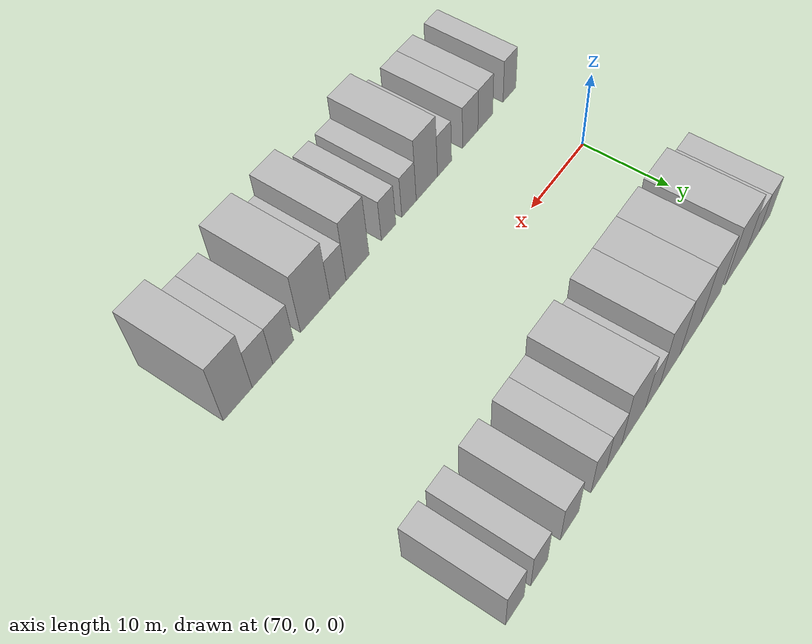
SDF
<sdf version="1.6">
 <world name="default">
  <model name="building_13">
   <static>1</static>
   <pose>69.0498 15.0000 0 0.000000 0.000000 1.570796</pose>
   <link name="link">
    <pose>0 0 3.00 0 0 0</pose>
    <collision name="collision"><geometry><box><size>10.0000 2.5598 6.0000</size></box></geometry></collision>
    <visual name="visual">
     <cast_shadows>0</cast_shadows>
     <geometry><box><size>10.0000 2.5598 6.0000</size></box></geometry>
     <material>
      <script>
       <uri>model://HANNAS_wall/materials/scripts</uri>
       <uri>model://HANNAS_wall/materials/textures</uri>
       <name>vrc/HANNAS_wall</name>
      </script>
     </material>
    </visual>
   </link>
  </model>
  <model name="building_14">
   <static>1</static>
   <pose>71.7501 15.0000 0 0.000000 0.000000 1.570796</pose>
   <link name="link">
    <pose>0 0 3.00 0 0 0</pose>
    <collision name="collision"><geometry><box><size>10.0000 2.8408 6.0000</size></box></geometry></collision>
    <visual name="visual">
     <cast_shadows>0</cast_shadows>
     <geometry><box><size>10.0000 2.8408 6.0000</size></box></geometry>
     <material>
      <script>
       <uri>model://HANNAS_wall/materials/scripts</uri>
       <uri>model://HANNAS_wall/materials/textures</uri>
       <name>vrc/HANNAS_wall</name>
      </script>
     </material>
    </visual>
   </link>
  </model>
  <model name="building_15">
   <static>1</static>
   <pose>75.4201 15.0000 0 0.000000 0.000000 1.570796</pose>
   <link name="link">
    <pose>0 0 4.50 0 0 0</pose>
    <collision name="collision"><geometry><box><size>10.0000 4.4993 9.0000</size></box></geometry></collision>
    <visual name="visual">
     <cast_shadows>0</cast_shadows>
     <geometry><box><size>10.0000 4.4993 9.0000</size></box></geometry>
     <material>
      <script>
       <uri>model://HANNAS_wall/materials/scripts</uri>
       <uri>model://HANNAS_wall/materials/textures</uri>
       <name>vrc/HANNAS_wall</name>
      </script>
     </material>
    </visual>
   </link>
  </model>
  <model name="building_16">
   <static>1</static>
   <pose>80.6914 15.0000 0 0.000000 0.000000 1.570796</pose>
   <link name="link">
    <pose>0 0 4.50 0 0 0</pose>
    <collision name="collision"><geometry><box><size>10.0000 4.0434 9.0000</size></box></geometry></collision>
    <visual name="visual">
     <cast_shadows>0</cast_shadows>
     <geometry><box><size>10.0000 4.0434 9.0000</size></box></geometry>
     <material>
      <script>
       <uri>model://HANNAS_wall/materials/scripts</uri>
       <uri>model://HANNAS_wall/materials/textures</uri>
       <name>vrc/HANNAS_wall</name>
      </script>
     </material>
    </visual>
   </link>
  </model>
  <model name="building_17">
   <static>1</static>
   <pose>84.7833 15.0000 0 0.000000 0.000000 1.570796</pose>
   <link name="link">
    <pose>0 0 4.50 0 0 0</pose>
    <collision name="collision"><geometry><box><size>10.0000 4.1405 9.0000</size></box></geometry></collision>
    <visual name="visual">
     <cast_shadows>0</cast_shadows>
     <geometry><box><size>10.0000 4.1405 9.0000</size></box></geometry>
     <material>
      <script>
       <uri>model://HANNAS_wall/materials/scripts</uri>
       <uri>model://HANNAS_wall/materials/textures</uri>
       <name>vrc/HANNAS_wall</name>
      </script>
     </material>
    </visual>
   </link>
  </model>
  <model name="building_18">
   <static>1</static>
   <pose>88.7812 15.0000 0 0.000000 0.000000 1.570796</pose>
   <link name="link">
    <pose>0 0 4.50 0 0 0</pose>
    <collision name="collision"><geometry><box><size>10.0000 3.8553 9.0000</size></box></geometry></collision>
    <visual name="visual">
     <cast_shadows>0</cast_shadows>
     <geometry><box><size>10.0000 3.8553 9.0000</size></box></geometry>
     <material>
      <script>
       <uri>model://HANNAS_wall/materials/scripts</uri>
       <uri>model://HANNAS_wall/materials/textures</uri>
       <name>vrc/HANNAS_wall</name>
      </script>
     </material>
    </visual>
   </link>
  </model>
  <model name="building_19">
   <static>1</static>
   <pose>92.0073 15.0000 0 0.000000 0.000000 1.570796</pose>
   <link name="link">
    <pose>0 0 3.00 0 0 0</pose>
    <collision name="collision"><geometry><box><size>10.0000 2.5967 6.0000</size></box></geometry></collision>
    <visual name="visual">
     <cast_shadows>0</cast_shadows>
     <geometry><box><size>10.0000 2.5967 6.0000</size></box></geometry>
     <material>
      <script>
       <uri>model://HANNAS_wall/materials/scripts</uri>
       <uri>model://HANNAS_wall/materials/textures</uri>
       <name>vrc/HANNAS_wall</name>
      </script>
     </material>
    </visual>
   </link>
  </model>
  <model name="building_20">
   <static>1</static>
   <pose>95.4486 15.0000 0 0.000000 0.000000 1.570796</pose>
   <link name="link">
    <pose>0 0 4.50 0 0 0</pose>
    <collision name="collision"><geometry><box><size>10.0000 4.2859 9.0000</size></box></geometry></collision>
    <visual name="visual">
     <cast_shadows>0</cast_shadows>
     <geometry><box><size>10.0000 4.2859 9.0000</size></box></geometry>
     <material>
      <script>
       <uri>model://HANNAS_wall/materials/scripts</uri>
       <uri>model://HANNAS_wall/materials/textures</uri>
       <name>vrc/HANNAS_wall</name>
      </script>
     </material>
    </visual>
   </link>
  </model>
  <model name="building_21">
   <static>1</static>
   <pose>98.8770 15.0000 0 0.000000 0.000000 1.570796</pose>
   <link name="link">
    <pose>0 0 3.00 0 0 0</pose>
    <collision name="collision"><geometry><box><size>10.0000 2.5709 6.0000</size></box></geometry></collision>
    <visual name="visual">
     <cast_shadows>0</cast_shadows>
     <geometry><box><size>10.0000 2.5709 6.0000</size></box></geometry>
     <material>
      <script>
       <uri>model://HANNAS_wall/materials/scripts</uri>
       <uri>model://HANNAS_wall/materials/textures</uri>
       <name>vrc/HANNAS_wall</name>
      </script>
     </material>
    </visual>
   </link>
  </model>
  <model name="building_22">
   <static>1</static>
   <pose>101.4697 15.0000 0 0.000000 0.000000 1.570796</pose>
   <link name="link">
    <pose>0 0 3.00 0 0 0</pose>
    <collision name="collision"><geometry><box><size>10.0000 2.6144 6.0000</size></box></geometry></collision>
    <visual name="visual">
     <cast_shadows>0</cast_shadows>
     <geometry><box><size>10.0000 2.6144 6.0000</size></box></geometry>
     <material>
      <script>
       <uri>model://HANNAS_wall/materials/scripts</uri>
       <uri>model://HANNAS_wall/materials/textures</uri>
       <name>vrc/HANNAS_wall</name>
      </script>
     </material>
    </visual>
   </link>
  </model>
  <model name="building_23">
   <static>1</static>
   <pose>106.2533 15.0000 0 0.000000 0.000000 1.570796</pose>
   <link name="link">
    <pose>0 0 3.00 0 0 0</pose>
    <collision name="collision"><geometry><box><size>10.0000 2.9528 6.0000</size></box></geometry></collision>
    <visual name="visual">
     <cast_shadows>0</cast_shadows>
     <geometry><box><size>10.0000 2.9528 6.0000</size></box></geometry>
     <material>
      <script>
       <uri>model://HANNAS_wall/materials/scripts</uri>
       <uri>model://HANNAS_wall/materials/textures</uri>
       <name>vrc/HANNAS_wall</name>
      </script>
     </material>
    </visual>
   </link>
  </model>
  <model name="building_24">
   <static>1</static>
   <pose>111.0208 15.0000 0 0.000000 0.000000 1.570796</pose>
   <link name="link">
    <pose>0 0 3.00 0 0 0</pose>
    <collision name="collision"><geometry><box><size>10.0000 2.5822 6.0000</size></box></geometry></collision>
    <visual name="visual">
     <cast_shadows>0</cast_shadows>
     <geometry><box><size>10.0000 2.5822 6.0000</size></box></geometry>
     <material>
      <script>
       <uri>model://HANNAS_wall/materials/scripts</uri>
       <uri>model://HANNAS_wall/materials/textures</uri>
       <name>vrc/HANNAS_wall</name>
      </script>
     </material>
    </visual>
   </link>
  </model>
  <model name="building_25">
   <static>1</static>
   <pose>114.6714 15.0000 0 0.000000 0.000000 1.570796</pose>
   <link name="link">
    <pose>0 0 3.00 0 0 0</pose>
    <collision name="collision"><geometry><box><size>10.0000 2.7189 6.0000</size></box></geometry></collision>
    <visual name="visual">
     <cast_shadows>0</cast_shadows>
     <geometry><box><size>10.0000 2.7189 6.0000</size></box></geometry>
     <material>
      <script>
       <uri>model://HANNAS_wall/materials/scripts</uri>
       <uri>model://HANNAS_wall/materials/textures</uri>
       <name>vrc/HANNAS_wall</name>
      </script>
     </material>
    </visual>
   </link>
  </model>
  <model name="building_66">
   <static>1</static>
   <pose>68.4313 -15.0000 0 0.000000 0.000000 1.570796</pose>
   <link name="link">
    <pose>0 0 3.00 0 0 0</pose>
    <collision name="collision"><geometry><box><size>10.0000 2.5121 6.0000</size></box></geometry></collision>
    <visual name="visual">
     <cast_shadows>0</cast_shadows>
     <geometry><box><size>10.0000 2.5121 6.0000</size></box></geometry>
     <material>
      <script>
       <uri>model://HANNAS_wall/materials/scripts</uri>
       <uri>model://HANNAS_wall/materials/textures</uri>
       <name>vrc/HANNAS_wall</name>
      </script>
     </material>
    </visual>
   </link>
  </model>
  <model name="building_67">
   <static>1</static>
   <pose>73.0961 -15.0000 0 0.000000 0.000000 1.570796</pose>
   <link name="link">
    <pose>0 0 3.00 0 0 0</pose>
    <collision name="collision"><geometry><box><size>10.0000 2.8175 6.0000</size></box></geometry></collision>
    <visual name="visual">
     <cast_shadows>0</cast_shadows>
     <geometry><box><size>10.0000 2.8175 6.0000</size></box></geometry>
     <material>
      <script>
       <uri>model://HANNAS_wall/materials/scripts</uri>
       <uri>model://HANNAS_wall/materials/textures</uri>
       <name>vrc/HANNAS_wall</name>
      </script>
     </material>
    </visual>
   </link>
  </model>
  <model name="building_68">
   <static>1</static>
   <pose>75.9450 -15.0000 0 0.000000 0.000000 1.570796</pose>
   <link name="link">
    <pose>0 0 3.00 0 0 0</pose>
    <collision name="collision"><geometry><box><size>10.0000 2.8802 6.0000</size></box></geometry></collision>
    <visual name="visual">
     <cast_shadows>0</cast_shadows>
     <geometry><box><size>10.0000 2.8802 6.0000</size></box></geometry>
     <material>
      <script>
       <uri>model://HANNAS_wall/materials/scripts</uri>
       <uri>model://HANNAS_wall/materials/textures</uri>
       <name>vrc/HANNAS_wall</name>
      </script>
     </material>
    </visual>
   </link>
  </model>
  <model name="building_69">
   <static>1</static>
   <pose>80.6461 -15.0000 0 0.000000 0.000000 1.570796</pose>
   <link name="link">
    <pose>0 0 3.00 0 0 0</pose>
    <collision name="collision"><geometry><box><size>10.0000 2.5220 6.0000</size></box></geometry></collision>
    <visual name="visual">
     <cast_shadows>0</cast_shadows>
     <geometry><box><size>10.0000 2.5220 6.0000</size></box></geometry>
     <material>
      <script>
       <uri>model://HANNAS_wall/materials/scripts</uri>
       <uri>model://HANNAS_wall/materials/textures</uri>
       <name>vrc/HANNAS_wall</name>
      </script>
     </material>
    </visual>
   </link>
  </model>
  <model name="building_70">
   <static>1</static>
   <pose>83.7614 -15.0000 0 0.000000 0.000000 1.570796</pose>
   <link name="link">
    <pose>0 0 4.50 0 0 0</pose>
    <collision name="collision"><geometry><box><size>10.0000 3.7086 9.0000</size></box></geometry></collision>
    <visual name="visual">
     <cast_shadows>0</cast_shadows>
     <geometry><box><size>10.0000 3.7086 9.0000</size></box></geometry>
     <material>
      <script>
       <uri>model://HANNAS_wall/materials/scripts</uri>
       <uri>model://HANNAS_wall/materials/textures</uri>
       <name>vrc/HANNAS_wall</name>
      </script>
     </material>
    </visual>
   </link>
  </model>
  <model name="building_71">
   <static>1</static>
   <pose>86.8402 -15.0000 0 0.000000 0.000000 1.570796</pose>
   <link name="link">
    <pose>0 0 3.00 0 0 0</pose>
    <collision name="collision"><geometry><box><size>10.0000 2.4489 6.0000</size></box></geometry></collision>
    <visual name="visual">
     <cast_shadows>0</cast_shadows>
     <geometry><box><size>10.0000 2.4489 6.0000</size></box></geometry>
     <material>
      <script>
       <uri>model://HANNAS_wall/materials/scripts</uri>
       <uri>model://HANNAS_wall/materials/textures</uri>
       <name>vrc/HANNAS_wall</name>
      </script>
     </material>
    </visual>
   </link>
  </model>
  <model name="building_72">
   <static>1</static>
   <pose>90.2648 -15.0000 0 0.000000 0.000000 1.570796</pose>
   <link name="link">
    <pose>0 0 3.00 0 0 0</pose>
    <collision name="collision"><geometry><box><size>10.0000 2.4004 6.0000</size></box></geometry></collision>
    <visual name="visual">
     <cast_shadows>0</cast_shadows>
     <geometry><box><size>10.0000 2.4004 6.0000</size></box></geometry>
     <material>
      <script>
       <uri>model://HANNAS_wall/materials/scripts</uri>
       <uri>model://HANNAS_wall/materials/textures</uri>
       <name>vrc/HANNAS_wall</name>
      </script>
     </material>
    </visual>
   </link>
  </model>
  <model name="building_73">
   <static>1</static>
   <pose>95.2862 -15.0000 0 0.000000 0.000000 1.570796</pose>
   <link name="link">
    <pose>0 0 4.50 0 0 0</pose>
    <collision name="collision"><geometry><box><size>10.0000 3.6424 9.0000</size></box></geometry></collision>
    <visual name="visual">
     <cast_shadows>0</cast_shadows>
     <geometry><box><size>10.0000 3.6424 9.0000</size></box></geometry>
     <material>
      <script>
       <uri>model://HANNAS_wall/materials/scripts</uri>
       <uri>model://HANNAS_wall/materials/textures</uri>
       <name>vrc/HANNAS_wall</name>
      </script>
     </material>
    </visual>
   </link>
  </model>
  <model name="building_74">
   <static>1</static>
   <pose>98.3562 -15.0000 0 0.000000 0.000000 1.570796</pose>
   <link name="link">
    <pose>0 0 3.00 0 0 0</pose>
    <collision name="collision"><geometry><box><size>10.0000 2.4974 6.0000</size></box></geometry></collision>
    <visual name="visual">
     <cast_shadows>0</cast_shadows>
     <geometry><box><size>10.0000 2.4974 6.0000</size></box></geometry>
     <material>
      <script>
       <uri>model://HANNAS_wall/materials/scripts</uri>
       <uri>model://HANNAS_wall/materials/textures</uri>
       <name>vrc/HANNAS_wall</name>
      </script>
     </material>
    </visual>
   </link>
  </model>
  <model name="building_75">
   <static>1</static>
   <pose>101.7871 -15.0000 0 0.000000 0.000000 1.570796</pose>
   <link name="link">
    <pose>0 0 4.50 0 0 0</pose>
    <collision name="collision"><geometry><box><size>10.0000 4.3645 9.0000</size></box></geometry></collision>
    <visual name="visual">
     <cast_shadows>0</cast_shadows>
     <geometry><box><size>10.0000 4.3645 9.0000</size></box></geometry>
     <material>
      <script>
       <uri>model://HANNAS_wall/materials/scripts</uri>
       <uri>model://HANNAS_wall/materials/textures</uri>
       <name>vrc/HANNAS_wall</name>
      </script>
     </material>
    </visual>
   </link>
  </model>
  <model name="building_76">
   <static>1</static>
   <pose>106.4688 -15.0000 0 0.000000 0.000000 1.570796</pose>
   <link name="link">
    <pose>0 0 3.00 0 0 0</pose>
    <collision name="collision"><geometry><box><size>10.0000 2.9989 6.0000</size></box></geometry></collision>
    <visual name="visual">
     <cast_shadows>0</cast_shadows>
     <geometry><box><size>10.0000 2.9989 6.0000</size></box></geometry>
     <material>
      <script>
       <uri>model://HANNAS_wall/materials/scripts</uri>
       <uri>model://HANNAS_wall/materials/textures</uri>
       <name>vrc/HANNAS_wall</name>
      </script>
     </material>
    </visual>
   </link>
  </model>
  <model name="building_77">
   <static>1</static>
   <pose>109.4089 -15.0000 0 0.000000 0.000000 1.570796</pose>
   <link name="link">
    <pose>0 0 3.00 0 0 0</pose>
    <collision name="collision"><geometry><box><size>10.0000 2.8814 6.0000</size></box></geometry></collision>
    <visual name="visual">
     <cast_shadows>0</cast_shadows>
     <geometry><box><size>10.0000 2.8814 6.0000</size></box></geometry>
     <material>
      <script>
       <uri>model://HANNAS_wall/materials/scripts</uri>
       <uri>model://HANNAS_wall/materials/textures</uri>
       <name>vrc/HANNAS_wall</name>
      </script>
     </material>
    </visual>
   </link>
  </model>
  <model name="building_78">
   <static>1</static>
   <pose>112.8025 -15.0000 0 0.000000 0.000000 1.570796</pose>
   <link name="link">
    <pose>0 0 4.50 0 0 0</pose>
    <collision name="collision"><geometry><box><size>10.0000 3.9058 9.0000</size></box></geometry></collision>
    <visual name="visual">
     <cast_shadows>0</cast_shadows>
     <geometry><box><size>10.0000 3.9058 9.0000</size></box></geometry>
     <material>
      <script>
       <uri>model://HANNAS_wall/materials/scripts</uri>
       <uri>model://HANNAS_wall/materials/textures</uri>
       <name>vrc/HANNAS_wall</name>
      </script>
     </material>
    </visual>
   </link>
  </model>
 </world>
</sdf>
